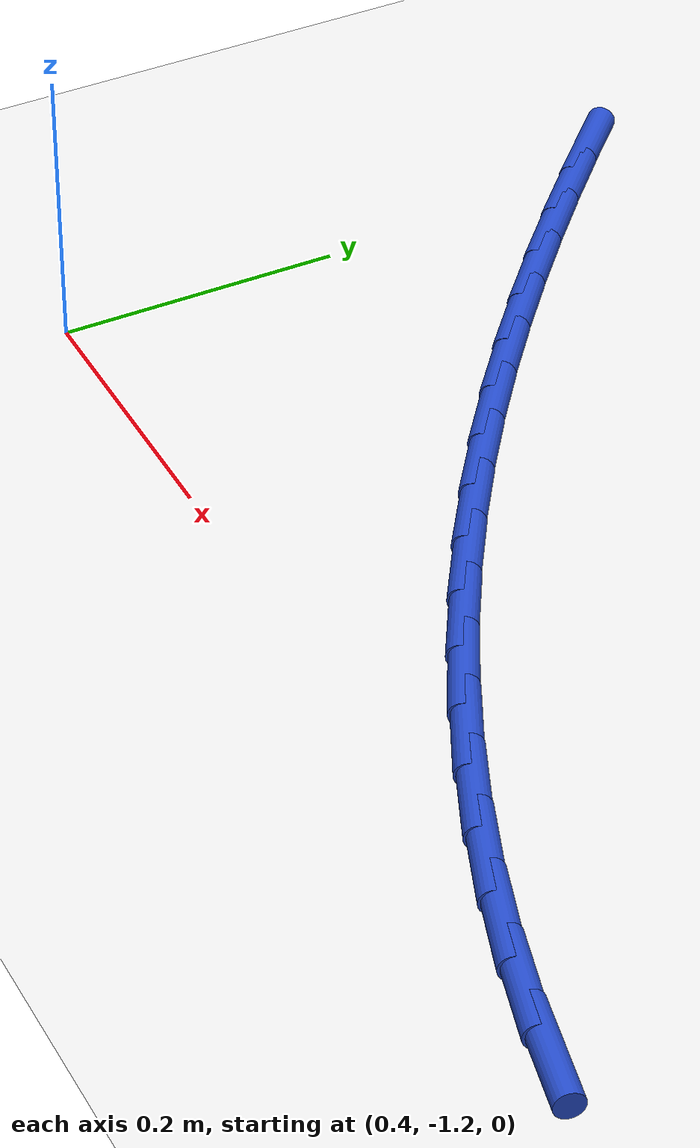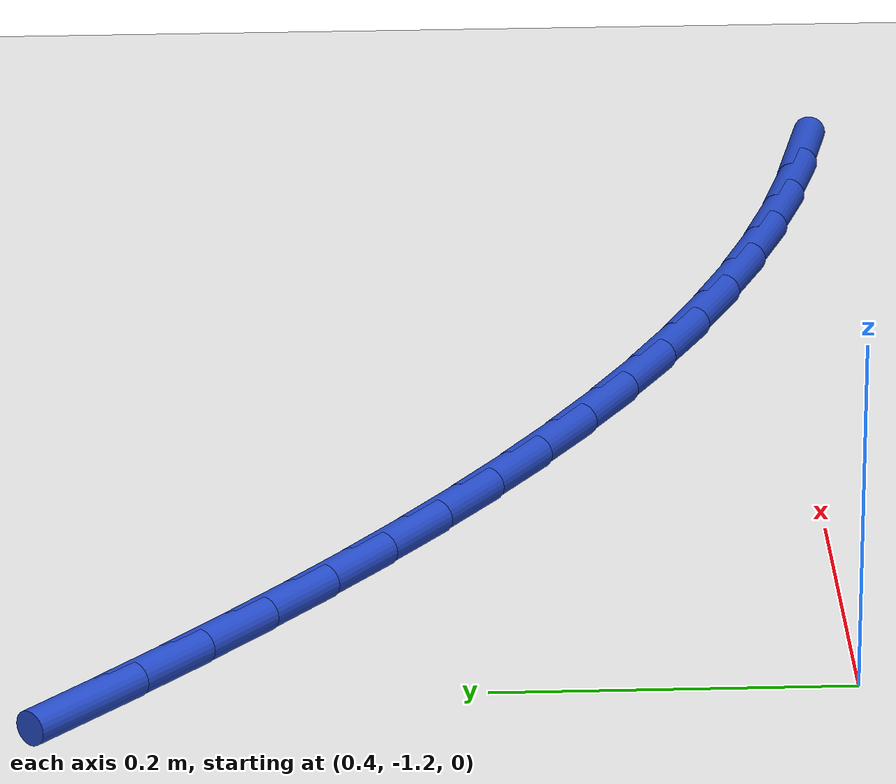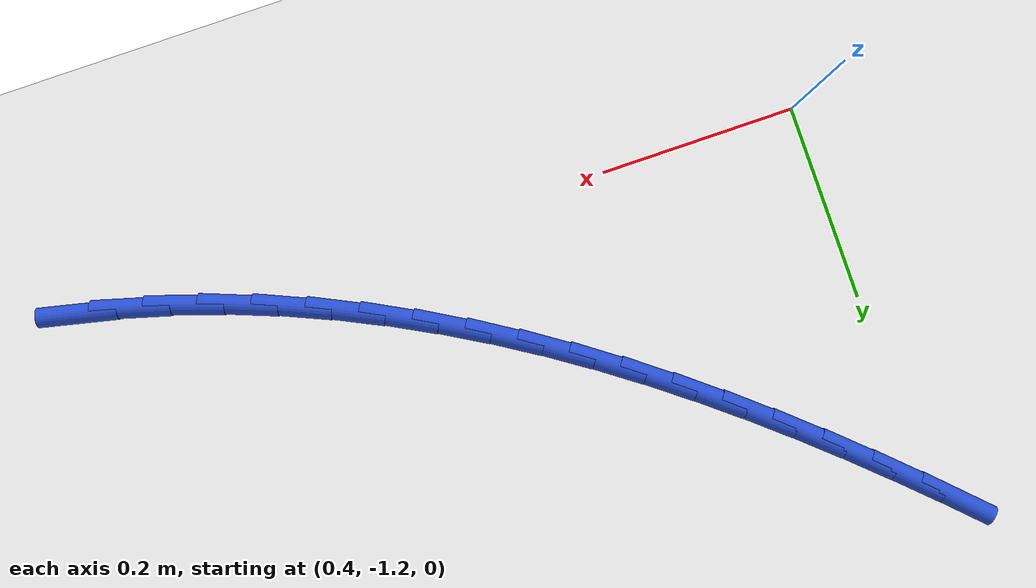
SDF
<sdf version="1.6">
 <world name="default">
  <model name="ground_plane">
   <static>1</static>
   <link name="link">
    <collision name="collision">
     <geometry><plane><normal>0 0 1</normal><size>100 100</size></plane></geometry>
     <surface><friction><ode><mu>100</mu><mu2>50</mu2></ode></friction></surface>
    </collision>
    <visual name="visual">
     <cast_shadows>0</cast_shadows>
     <geometry><plane><normal>0 0 1</normal><size>100 100</size></plane></geometry>
     <material>
      <script><uri>file://media/materials/scripts/gazebo.material</uri><name>Gazebo/WhiteGlow</name></script>
     </material>
    </visual>
   </link>
  </model>
  <model name="line">
   <link name="link_106">
    <pose>1.138288468562867 -1.233649729886707 0.01 0 1.57 -0.22198730976744127</pose>
    <collision name="collision">
     <geometry><cylinder><radius>0.01</radius><length>0.08</length></cylinder></geometry>
    </collision>
    <visual name="visual">
     <material>
      <script><name>Gazebo/Blue</name><uri>file://media/materials/scripts/gazebo.material</uri></script>
     </material>
     <geometry><cylinder><radius>0.01</radius><length>0.08</length></cylinder></geometry>
    </visual>
   </link>
   <link name="link_107">
    <pose>1.0865601290793827 -1.2219742795763147 0.01 0 1.57 -0.2729166496419705</pose>
    <collision name="collision">
     <geometry><cylinder><radius>0.01</radius><length>0.08</length></cylinder></geometry>
    </collision>
    <visual name="visual">
     <material>
      <script><name>Gazebo/Blue</name><uri>file://media/materials/scripts/gazebo.material</uri></script>
     </material>
     <geometry><cylinder><radius>0.01</radius><length>0.08</length></cylinder></geometry>
    </visual>
   </link>
   <link name="link_108">
    <pose>1.0354032805711522 -1.207655440225728 0.01 0 1.57 -0.320992591146438</pose>
    <collision name="collision">
     <geometry><cylinder><radius>0.01</radius><length>0.08</length></cylinder></geometry>
    </collision>
    <visual name="visual">
     <material>
      <script><name>Gazebo/Blue</name><uri>file://media/materials/scripts/gazebo.material</uri></script>
     </material>
     <geometry><cylinder><radius>0.01</radius><length>0.08</length></cylinder></geometry>
    </visual>
   </link>
   <link name="link_109">
    <pose>0.9849263881348472 -1.1908723093833504 0.01 0 1.57 -0.3664263089468079</pose>
    <collision name="collision">
     <geometry><cylinder><radius>0.01</radius><length>0.08</length></cylinder></geometry>
    </collision>
    <visual name="visual">
     <material>
      <script><name>Gazebo/Blue</name><uri>file://media/materials/scripts/gazebo.material</uri></script>
     </material>
     <geometry><cylinder><radius>0.01</radius><length>0.08</length></cylinder></geometry>
    </visual>
   </link>
   <link name="link_110">
    <pose>0.9352379168671414 -1.171803984597588 0.01 0 1.57 -0.4094495323202014</pose>
    <collision name="collision">
     <geometry><cylinder><radius>0.01</radius><length>0.08</length></cylinder></geometry>
    </collision>
    <visual name="visual">
     <material>
      <script><name>Gazebo/Blue</name><uri>file://media/materials/scripts/gazebo.material</uri></script>
     </material>
     <geometry><cylinder><radius>0.01</radius><length>0.08</length></cylinder></geometry>
    </visual>
   </link>
   <link name="link_111">
    <pose>0.8864463318647061 -1.1506295634168449 0.01 0 1.57 -0.45030600813543287</pose>
    <collision name="collision">
     <geometry><cylinder><radius>0.01</radius><length>0.08</length></cylinder></geometry>
    </collision>
    <visual name="visual">
     <material>
      <script><name>Gazebo/Blue</name><uri>file://media/materials/scripts/gazebo.material</uri></script>
     </material>
     <geometry><cylinder><radius>0.01</radius><length>0.08</length></cylinder></geometry>
    </visual>
   </link>
   <link name="link_112">
    <pose>0.8386600982242134 -1.1275281433895255 0.01 0 1.57 -0.4892418366933919</pose>
    <collision name="collision">
     <geometry><cylinder><radius>0.01</radius><length>0.08</length></cylinder></geometry>
    </collision>
    <visual name="visual">
     <material>
      <script><name>Gazebo/Blue</name><uri>file://media/materials/scripts/gazebo.material</uri></script>
     </material>
     <geometry><cylinder><radius>0.01</radius><length>0.08</length></cylinder></geometry>
    </visual>
   </link>
   <link name="link_113">
    <pose>0.7919846637941472 -1.1026774570370805 0.01 0 1.57 -0.5263338310403811</pose>
    <collision name="collision">
     <geometry><cylinder><radius>0.01</radius><length>0.08</length></cylinder></geometry>
    </collision>
    <visual name="visual">
     <material>
      <script><name>Gazebo/Blue</name><uri>file://media/materials/scripts/gazebo.material</uri></script>
     </material>
     <geometry><cylinder><radius>0.01</radius><length>0.08</length></cylinder></geometry>
    </visual>
   </link>
   <link name="link_114">
    <pose>0.7464453362110322 -1.0762189808149536 0.01 0 1.57 -0.5614026784800157</pose>
    <collision name="collision">
     <geometry><cylinder><radius>0.01</radius><length>0.08</length></cylinder></geometry>
    </collision>
    <visual name="visual">
     <material>
      <script><name>Gazebo/Blue</name><uri>file://media/materials/scripts/gazebo.material</uri></script>
     </material>
     <geometry><cylinder><radius>0.01</radius><length>0.08</length></cylinder></geometry>
    </visual>
   </link>
   <link name="link_115">
    <pose>0.7019808167596867 -1.0482550097797978 0.01 0 1.57 -0.5943308818603463</pose>
    <collision name="collision">
     <geometry><cylinder><radius>0.01</radius><length>0.08</length></cylinder></geometry>
    </collision>
    <visual name="visual">
     <material>
      <script><name>Gazebo/Blue</name><uri>file://media/materials/scripts/gazebo.material</uri></script>
     </material>
     <geometry><cylinder><radius>0.01</radius><length>0.08</length></cylinder></geometry>
    </visual>
   </link>
   <link name="link_116">
    <pose>0.6585254938073626 -1.0188858877902327 0.01 0 1.57 -0.6250366863404602</pose>
    <collision name="collision">
     <geometry><cylinder><radius>0.01</radius><length>0.08</length></cylinder></geometry>
    </collision>
    <visual name="visual">
     <material>
      <script><name>Gazebo/Blue</name><uri>file://media/materials/scripts/gazebo.material</uri></script>
     </material>
     <geometry><cylinder><radius>0.01</radius><length>0.08</length></cylinder></geometry>
    </visual>
   </link>
   <link name="link_117">
    <pose>0.6160137557213108 -0.9882119587048772 0.01 0 1.57 -0.6534648191025182</pose>
    <collision name="collision">
     <geometry><cylinder><radius>0.01</radius><length>0.08</length></cylinder></geometry>
    </collision>
    <visual name="visual">
     <material>
      <script><name>Gazebo/Blue</name><uri>file://media/materials/scripts/gazebo.material</uri></script>
     </material>
     <geometry><cylinder><radius>0.01</radius><length>0.08</length></cylinder></geometry>
    </visual>
   </link>
   <link name="link_118">
    <pose>0.5743799908687842 -0.9563335663823516 0.01 0 1.57 -0.6795824700343656</pose>
    <collision name="collision">
     <geometry><cylinder><radius>0.01</radius><length>0.08</length></cylinder></geometry>
    </collision>
    <visual name="visual">
     <material>
      <script><name>Gazebo/Blue</name><uri>file://media/materials/scripts/gazebo.material</uri></script>
     </material>
     <geometry><cylinder><radius>0.01</radius><length>0.08</length></cylinder></geometry>
    </visual>
   </link>
   <link name="link_119">
    <pose>0.5335585876170343 -0.923351054681275 0.01 0 1.57 -0.703375086807463</pose>
    <collision name="collision">
     <geometry><cylinder><radius>0.01</radius><length>0.08</length></cylinder></geometry>
    </collision>
    <visual name="visual">
     <material>
      <script><name>Gazebo/Blue</name><uri>file://media/materials/scripts/gazebo.material</uri></script>
     </material>
     <geometry><cylinder><radius>0.01</radius><length>0.08</length></cylinder></geometry>
    </visual>
   </link>
   <link name="link_120">
    <pose>0.49348393433331245 -0.8893647674602668 0.01 0 1.57 -0.724842243594002</pose>
    <collision name="collision">
     <geometry><cylinder><radius>0.01</radius><length>0.08</length></cylinder></geometry>
    </collision>
    <visual name="visual">
     <material>
      <script><name>Gazebo/Blue</name><uri>file://media/materials/scripts/gazebo.material</uri></script>
     </material>
     <geometry><cylinder><radius>0.01</radius><length>0.08</length></cylinder></geometry>
    </visual>
   </link>
   <link name="link_121">
    <pose>0.4540904193848702 -0.8544750485779462 0.01 0 1.57 -0.7439937663868476</pose>
    <collision name="collision">
     <geometry><cylinder><radius>0.01</radius><length>0.08</length></cylinder></geometry>
    </collision>
    <visual name="visual">
     <material>
      <script><name>Gazebo/Blue</name><uri>file://media/materials/scripts/gazebo.material</uri></script>
     </material>
     <geometry><cylinder><radius>0.01</radius><length>0.08</length></cylinder></geometry>
    </visual>
   </link>
   <link name="link_122">
    <pose>0.415312431138959 -0.8187822418929324 0.01 0 1.57 -0.7608462289631467</pose>
    <collision name="collision">
     <geometry><cylinder><radius>0.01</radius><length>0.08</length></cylinder></geometry>
    </collision>
    <visual name="visual">
     <material>
      <script><name>Gazebo/Blue</name><uri>file://media/materials/scripts/gazebo.material</uri></script>
     </material>
     <geometry><cylinder><radius>0.01</radius><length>0.08</length></cylinder></geometry>
    </visual>
   </link>
   <link name="link_123">
    <pose>0.3770843579628315 -0.7823866912638457 0.01 0 1.57 -0.7766468902517346</pose>
    <collision name="collision">
     <geometry><cylinder><radius>0.01</radius><length>0.08</length></cylinder></geometry>
    </collision>
    <visual name="visual">
     <material>
      <script><name>Gazebo/Blue</name><uri>file://media/materials/scripts/gazebo.material</uri></script>
     </material>
     <geometry><cylinder><radius>0.01</radius><length>0.08</length></cylinder></geometry>
    </visual>
   </link>
  </model>
 </world>
</sdf>
